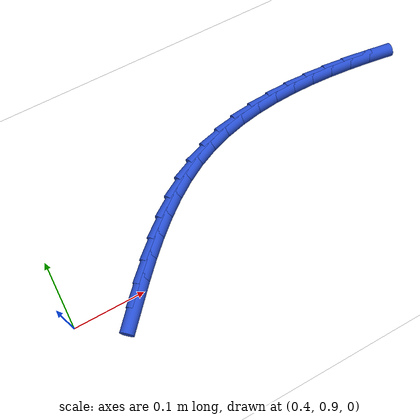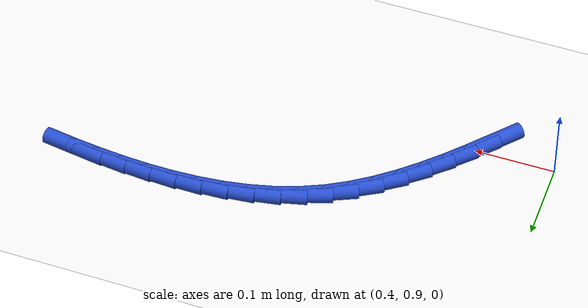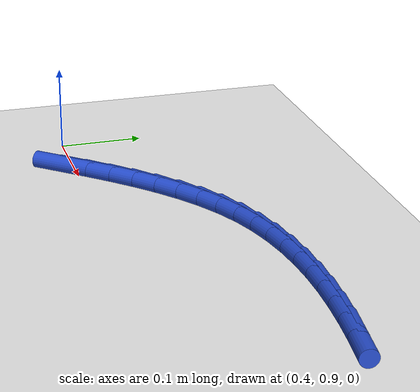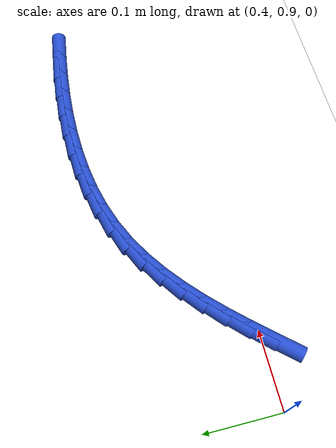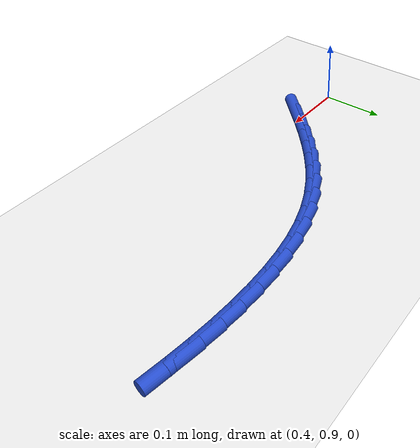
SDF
<sdf version="1.6">
 <world name="default">
  <model name="ground_plane">
   <static>1</static>
   <link name="link">
    <collision name="collision">
     <geometry><plane><normal>0 0 1</normal><size>100 100</size></plane></geometry>
     <surface><friction><ode><mu>100</mu><mu2>50</mu2></ode></friction></surface>
    </collision>
    <visual name="visual">
     <cast_shadows>0</cast_shadows>
     <geometry><plane><normal>0 0 1</normal><size>100 100</size></plane></geometry>
     <material>
      <script><uri>file://media/materials/scripts/gazebo.material</uri><name>Gazebo/WhiteGlow</name></script>
     </material>
    </visual>
   </link>
  </model>
  <model name="line">
   <link name="link_33">
    <pose>0.4825805829990302 0.887994267212138 0.01 0 1.57 0.8445967064743418</pose>
    <collision name="collision">
     <geometry><cylinder><radius>0.01</radius><length>0.08</length></cylinder></geometry>
    </collision>
    <visual name="visual">
     <material>
      <script><name>Gazebo/Blue</name><uri>file://media/materials/scripts/gazebo.material</uri></script>
     </material>
     <geometry><cylinder><radius>0.01</radius><length>0.08</length></cylinder></geometry>
    </visual>
   </link>
   <link name="link_34">
    <pose>0.5040767677097081 0.9121990472543016 0.01 0 1.57 0.8182070951453911</pose>
    <collision name="collision">
     <geometry><cylinder><radius>0.01</radius><length>0.08</length></cylinder></geometry>
    </collision>
    <visual name="visual">
     <material>
      <script><name>Gazebo/Blue</name><uri>file://media/materials/scripts/gazebo.material</uri></script>
     </material>
     <geometry><cylinder><radius>0.01</radius><length>0.08</length></cylinder></geometry>
    </visual>
   </link>
   <link name="link_35">
    <pose>0.5260568159068716 0.9356708576742824 0.01 0 1.57 0.7817681420238595</pose>
    <collision name="collision">
     <geometry><cylinder><radius>0.01</radius><length>0.08</length></cylinder></geometry>
    </collision>
    <visual name="visual">
     <material>
      <script><name>Gazebo/Blue</name><uri>file://media/materials/scripts/gazebo.material</uri></script>
     </material>
     <geometry><cylinder><radius>0.01</radius><length>0.08</length></cylinder></geometry>
    </visual>
   </link>
   <link name="link_36">
    <pose>0.5486523723569867 0.9581029620353106 0.01 0 1.57 0.7346398563368759</pose>
    <collision name="collision">
     <geometry><cylinder><radius>0.01</radius><length>0.08</length></cylinder></geometry>
    </collision>
    <visual name="visual">
     <material>
      <script><name>Gazebo/Blue</name><uri>file://media/materials/scripts/gazebo.material</uri></script>
     </material>
     <geometry><cylinder><radius>0.01</radius><length>0.08</length></cylinder></geometry>
    </visual>
   </link>
   <link name="link_37">
    <pose>0.5719950818265193 0.979188623900616 0.01 0 1.57 0.6761309491833303</pose>
    <collision name="collision">
     <geometry><cylinder><radius>0.01</radius><length>0.08</length></cylinder></geometry>
    </collision>
    <visual name="visual">
     <material>
      <script><name>Gazebo/Blue</name><uri>file://media/materials/scripts/gazebo.material</uri></script>
     </material>
     <geometry><cylinder><radius>0.01</radius><length>0.08</length></cylinder></geometry>
    </visual>
   </link>
   <link name="link_38">
    <pose>0.5962165890819353 0.9986211068334288 0.01 0 1.57 0.6056597134405197</pose>
    <collision name="collision">
     <geometry><cylinder><radius>0.01</radius><length>0.08</length></cylinder></geometry>
    </collision>
    <visual name="visual">
     <material>
      <script><name>Gazebo/Blue</name><uri>file://media/materials/scripts/gazebo.material</uri></script>
     </material>
     <geometry><cylinder><radius>0.01</radius><length>0.08</length></cylinder></geometry>
    </visual>
   </link>
   <link name="link_39">
    <pose>0.6214485388897006 1.0160936743969784 0.01 0 1.57 0.5229973598351159</pose>
    <collision name="collision">
     <geometry><cylinder><radius>0.01</radius><length>0.08</length></cylinder></geometry>
    </collision>
    <visual name="visual">
     <material>
      <script><name>Gazebo/Blue</name><uri>file://media/materials/scripts/gazebo.material</uri></script>
     </material>
     <geometry><cylinder><radius>0.01</radius><length>0.08</length></cylinder></geometry>
    </visual>
   </link>
   <link name="link_40">
    <pose>0.6478225760162815 1.0312995901544952 0.01 0 1.57 0.42885585457572645</pose>
    <collision name="collision">
     <geometry><cylinder><radius>0.01</radius><length>0.08</length></cylinder></geometry>
    </collision>
    <visual name="visual">
     <material>
      <script><name>Gazebo/Blue</name><uri>file://media/materials/scripts/gazebo.material</uri></script>
     </material>
     <geometry><cylinder><radius>0.01</radius><length>0.08</length></cylinder></geometry>
    </visual>
   </link>
   <link name="link_41">
    <pose>0.6754659308966621 1.0439391534803533 0.01 0 1.57 0.3330858787879804</pose>
    <collision name="collision">
     <geometry><cylinder><radius>0.01</radius><length>0.08</length></cylinder></geometry>
    </collision>
    <visual name="visual">
     <material>
      <script><name>Gazebo/Blue</name><uri>file://media/materials/scripts/gazebo.material</uri></script>
     </material>
     <geometry><cylinder><radius>0.01</radius><length>0.08</length></cylinder></geometry>
    </visual>
   </link>
   <link name="link_42">
    <pose>0.7043647845391011 1.053937476301539 0.01 0 1.57 0.2467208546980149</pose>
    <collision name="collision">
     <geometry><cylinder><radius>0.01</radius><length>0.08</length></cylinder></geometry>
    </collision>
    <visual name="visual">
     <material>
      <script><name>Gazebo/Blue</name><uri>file://media/materials/scripts/gazebo.material</uri></script>
     </material>
     <geometry><cylinder><radius>0.01</radius><length>0.08</length></cylinder></geometry>
    </visual>
   </link>
   <link name="link_43">
    <pose>0.7343380347744847 1.0614862959329474 0.01 0 1.57 0.17030666743963532</pose>
    <collision name="collision">
     <geometry><cylinder><radius>0.01</radius><length>0.08</length></cylinder></geometry>
    </collision>
    <visual name="visual">
     <material>
      <script><name>Gazebo/Blue</name><uri>file://media/materials/scripts/gazebo.material</uri></script>
     </material>
     <geometry><cylinder><radius>0.01</radius><length>0.08</length></cylinder></geometry>
    </visual>
   </link>
   <link name="link_44">
    <pose>0.7651948704491341 1.0667928244181089 0.01 0 1.57 0.10332297264583283</pose>
    <collision name="collision">
     <geometry><cylinder><radius>0.01</radius><length>0.08</length></cylinder></geometry>
    </collision>
    <visual name="visual">
     <material>
      <script><name>Gazebo/Blue</name><uri>file://media/materials/scripts/gazebo.material</uri></script>
     </material>
     <geometry><cylinder><radius>0.01</radius><length>0.08</length></cylinder></geometry>
    </visual>
   </link>
   <link name="link_45">
    <pose>0.7967444804093707 1.0700642738005548 0.01 0 1.57 0.04500894174793558</pose>
    <collision name="collision">
     <geometry><cylinder><radius>0.01</radius><length>0.08</length></cylinder></geometry>
    </collision>
    <visual name="visual">
     <material>
      <script><name>Gazebo/Blue</name><uri>file://media/materials/scripts/gazebo.material</uri></script>
     </material>
     <geometry><cylinder><radius>0.01</radius><length>0.08</length></cylinder></geometry>
    </visual>
   </link>
   <link name="link_46">
    <pose>0.828796053501517 1.0715078561238165 0.01 0 1.57 -0.005471446703290838</pose>
    <collision name="collision">
     <geometry><cylinder><radius>0.01</radius><length>0.08</length></cylinder></geometry>
    </collision>
    <visual name="visual">
     <material>
      <script><name>Gazebo/Blue</name><uri>file://media/materials/scripts/gazebo.material</uri></script>
     </material>
     <geometry><cylinder><radius>0.01</radius><length>0.08</length></cylinder></geometry>
    </visual>
   </link>
   <link name="link_47">
    <pose>0.8611587785718946 1.0713307834314247 0.01 0 1.57 -0.04892538156265053</pose>
    <collision name="collision">
     <geometry><cylinder><radius>0.01</radius><length>0.08</length></cylinder></geometry>
    </collision>
    <visual name="visual">
     <material>
      <script><name>Gazebo/Blue</name><uri>file://media/materials/scripts/gazebo.material</uri></script>
     </material>
     <geometry><cylinder><radius>0.01</radius><length>0.08</length></cylinder></geometry>
    </visual>
   </link>
   <link name="link_48">
    <pose>0.893641844466825 1.0697402677669101 0.01 0 1.57 -0.08607260760630311</pose>
    <collision name="collision">
     <geometry><cylinder><radius>0.01</radius><length>0.08</length></cylinder></geometry>
    </collision>
    <visual name="visual">
     <material>
      <script><name>Gazebo/Blue</name><uri>file://media/materials/scripts/gazebo.material</uri></script>
     </material>
     <geometry><cylinder><radius>0.01</radius><length>0.08</length></cylinder></geometry>
    </visual>
   </link>
   <link name="link_49">
    <pose>0.9260544400326303 1.0669435211738039 0.01 0 1.57 -0.1175158398029808</pose>
    <collision name="collision">
     <geometry><cylinder><radius>0.01</radius><length>0.08</length></cylinder></geometry>
    </collision>
    <visual name="visual">
     <material>
      <script><name>Gazebo/Blue</name><uri>file://media/materials/scripts/gazebo.material</uri></script>
     </material>
     <geometry><cylinder><radius>0.01</radius><length>0.08</length></cylinder></geometry>
    </visual>
   </link>
   <link name="link_50">
    <pose>0.9582057790823607 1.063147740246219 0.01 0 1.57 -0.14445269814854006</pose>
    <collision name="collision">
     <geometry><cylinder><radius>0.01</radius><length>0.08</length></cylinder></geometry>
    </collision>
    <visual name="visual">
     <material>
      <script><name>Gazebo/Blue</name><uri>file://media/materials/scripts/gazebo.material</uri></script>
     </material>
     <geometry><cylinder><radius>0.01</radius><length>0.08</length></cylinder></geometry>
    </visual>
   </link>
  </model>
 </world>
</sdf>
